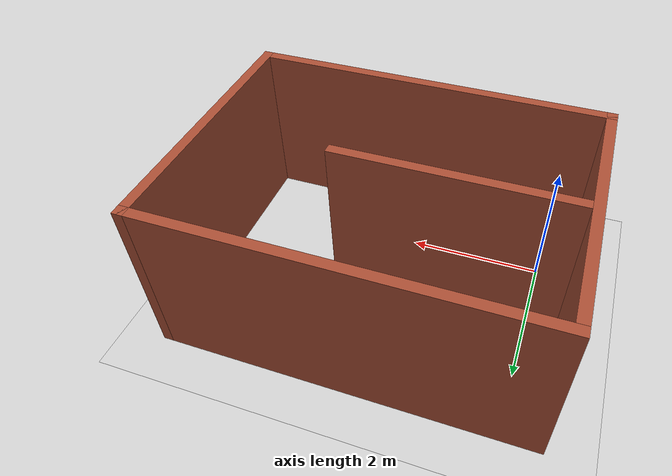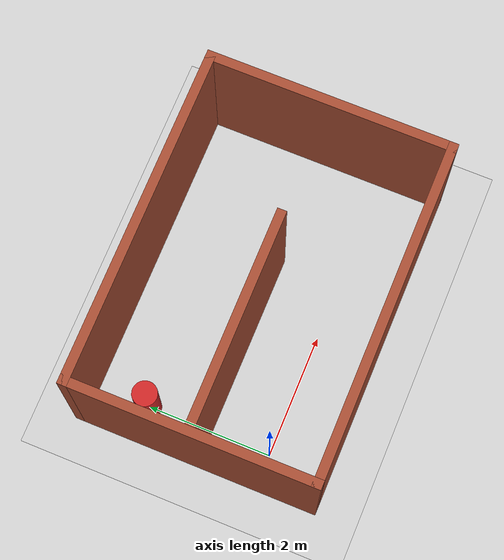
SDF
<sdf version="1.6">
 <world name="default">
  <model name="ground_plane">
   <static>1</static>
   <link name="link">
    <collision name="collision">
     <geometry><plane><normal>0 0 1</normal><size>100 100</size></plane></geometry>
     <surface><friction><ode><mu>100</mu><mu2>50</mu2></ode></friction></surface>
    </collision>
    <visual name="visual">
     <cast_shadows>0</cast_shadows>
     <geometry><plane><normal>0 0 1</normal><size>100 100</size></plane></geometry>
     <material>
      <script><uri>file://media/materials/scripts/gazebo.material</uri><name>Gazebo/Grey</name></script>
     </material>
    </visual>
   </link>
  </model>
  <gravity>0 0 -9.8</gravity>
  <magnetic_field>6e-06 2.3e-05 -4.2e-05</magnetic_field>
  <atmosphere type="adiabatic"/>
  <physics name="default_physics" default="0" type="ode">
   <max_step_size>0.01</max_step_size>
   <real_time_factor>1</real_time_factor>
   <real_time_update_rate>0</real_time_update_rate>
   <gravity>0 0 -9.8</gravity>
  </physics>
  <scene><ambient>0.4 0.4 0.4 1</ambient><background>0.7 0.7 0.7 1</background><shadows>1</shadows></scene>
  <spherical_coordinates>
   <surface_model>EARTH_WGS84</surface_model>
   <latitude_deg>0</latitude_deg>
   <longitude_deg>0</longitude_deg>
   <elevation>0</elevation>
   <heading_deg>0</heading_deg>
  </spherical_coordinates>
  <model name="simplemaze_brick">
   <pose>2.1635 1.00468 0 0 -0 0</pose>
   <link name="Wall_26">
    <collision name="Wall_26_Collision">
     <geometry><box><size>5.5 0.15 2.5</size></box></geometry>
     <pose>0 0 1.25 0 -0 0</pose>
    </collision>
    <visual name="Wall_26_Visual">
     <pose>0 0 1.25 0 -0 0</pose>
     <geometry><box><size>5.5 0.15 2.5</size></box></geometry>
     <material>
      <script><uri>file://media/materials/scripts/gazebo.material</uri><name>Gazebo/Bricks</name></script>
      <ambient>1 0.666667 0 1</ambient>
     </material>
     <meta><layer>0</layer></meta>
    </visual>
    <pose>0 -1.925 0 0 -0 0</pose>
   </link>
   <link name="Wall_27">
    <collision name="Wall_27_Collision">
     <geometry><box><size>4 0.15 2.5</size></box></geometry>
     <pose>0 0 1.25 0 -0 0</pose>
    </collision>
    <visual name="Wall_27_Visual">
     <pose>0 0 1.25 0 -0 0</pose>
     <geometry><box><size>4 0.15 2.5</size></box></geometry>
     <material>
      <script><uri>file://media/materials/scripts/gazebo.material</uri><name>Gazebo/Bricks</name></script>
      <ambient>0 1 1 1</ambient>
     </material>
     <meta><layer>0</layer></meta>
    </visual>
    <pose>2.675 0 0 0 -0 1.5708</pose>
   </link>
   <link name="Wall_28">
    <collision name="Wall_28_Collision">
     <geometry><box><size>5.5 0.15 2.5</size></box></geometry>
     <pose>0 0 1.25 0 -0 0</pose>
    </collision>
    <visual name="Wall_28_Visual">
     <pose>0 0 1.25 0 -0 0</pose>
     <geometry><box><size>5.5 0.15 2.5</size></box></geometry>
     <material>
      <script><uri>file://media/materials/scripts/gazebo.material</uri><name>Gazebo/Bricks</name></script>
      <ambient>0.666667 1 1 1</ambient>
     </material>
     <meta><layer>0</layer></meta>
    </visual>
    <pose>0 1.925 0 0 -0 3.14159</pose>
   </link>
   <link name="Wall_29">
    <collision name="Wall_29_Collision">
     <geometry><box><size>4 0.15 2.5</size></box></geometry>
     <pose>0 0 1.25 0 -0 0</pose>
    </collision>
    <visual name="Wall_29_Visual">
     <pose>0 0 1.25 0 -0 0</pose>
     <geometry><box><size>4 0.15 2.5</size></box></geometry>
     <material>
      <script><uri>file://media/materials/scripts/gazebo.material</uri><name>Gazebo/Bricks</name></script>
      <ambient>0 0 1 1</ambient>
     </material>
     <meta><layer>0</layer></meta>
    </visual>
    <pose>-2.675 0 0 0 0 -1.5708</pose>
   </link>
   <link name="Wall_31">
    <collision name="Wall_31_Collision">
     <geometry><box><size>3.5 0.15 2.5</size></box></geometry>
     <pose>0 0 1.25 0 -0 0</pose>
    </collision>
    <visual name="Wall_31_Visual">
     <pose>0 0 1.25 0 -0 0</pose>
     <geometry><box><size>3.5 0.15 2.5</size></box></geometry>
     <material>
      <script><uri>file://media/materials/scripts/gazebo.material</uri><name>Gazebo/Bricks</name></script>
      <ambient>0 0 0 1</ambient>
     </material>
     <meta><layer>0</layer></meta>
    </visual>
    <pose>-0.915278 0.0269 0 0 -0 0</pose>
   </link>
   <static>1</static>
  </model>
  <light name="user_directional_light_0" type="directional">
   <pose>-6.08742 3.15843 1 0 -0 0</pose>
   <diffuse>0.5 0.5 0.5 1</diffuse>
   <specular>0.1 0.1 0.1 1</specular>
   <direction>0.1 0.1 -0.9</direction>
   <attenuation>
    <range>20</range>
    <constant>0.5</constant>
    <linear>0.01</linear>
    <quadratic>0.001</quadratic>
   </attenuation>
  </light>
  <light name="user_directional_light_1" type="directional">
   <pose>1.48673 5.15506 1 0 -0 0</pose>
   <diffuse>0.5 0.5 0.5 1</diffuse>
   <specular>0.1 0.1 0.1 1</specular>
   <direction>0.1 0.1 -0.9</direction>
   <attenuation>
    <range>20</range>
    <constant>0.5</constant>
    <linear>0.01</linear>
    <quadratic>0.001</quadratic>
   </attenuation>
  </light>
  <model name="unit_cylinder">
   <link name="link">
    <inertial>
     <mass>100</mass>
     <inertia><ixx>0.145833</ixx><ixy>0</ixy><ixz>0</ixz><iyy>0.145833</iyy><iyz>0</iyz><izz>0.125</izz></inertia>
    </inertial>
    <visual name="visual">
     <geometry><cylinder><radius>0.2</radius><length>1</length></cylinder></geometry>
     <material>
      <script><name>Gazebo/Red</name><uri>file://media/materials/scripts/gazebo.material</uri></script>
      <emissive>0 0 0 1</emissive>
     </material>
    </visual>
    <collision name="collision">
     <geometry><cylinder><radius>0.2</radius><length>1</length></cylinder></geometry>
     <surface>
      <friction>
       <ode><mu>1</mu><mu2>1</mu2><fdir1>0 0 0</fdir1><slip1>0</slip1><slip2>0</slip2></ode>
       <torsional>
        <coefficient>1</coefficient>
        <patch_radius>0</patch_radius>
        <surface_radius>0</surface_radius>
        <use_patch_radius>1</use_patch_radius>
        <ode><slip>0</slip></ode>
       </torsional>
      </friction>
      <bounce><restitution_coefficient>0</restitution_coefficient><threshold>1e+06</threshold></bounce>
      <contact>
       <collide_without_contact>0</collide_without_contact>
       <collide_without_contact_bitmask>1</collide_without_contact_bitmask>
       <collide_bitmask>1</collide_bitmask>
       <ode>
        <soft_cfm>0</soft_cfm>
        <soft_erp>0.2</soft_erp>
        <kp>1e+13</kp>
        <kd>1</kd>
        <max_vel>0.01</max_vel>
        <min_depth>0</min_depth>
       </ode>
       <bullet>
        <split_impulse>1</split_impulse>
        <split_impulse_penetration_threshold>-0.01</split_impulse_penetration_threshold>
        <soft_cfm>0</soft_cfm>
        <soft_erp>0.2</soft_erp>
        <kp>1e+13</kp>
        <kd>1</kd>
       </bullet>
      </contact>
     </surface>
    </collision>
   </link>
   <static>0</static>
   <pose>0 2.02231 0.5 0 -0 0</pose>
  </model>
 </world>
</sdf>
